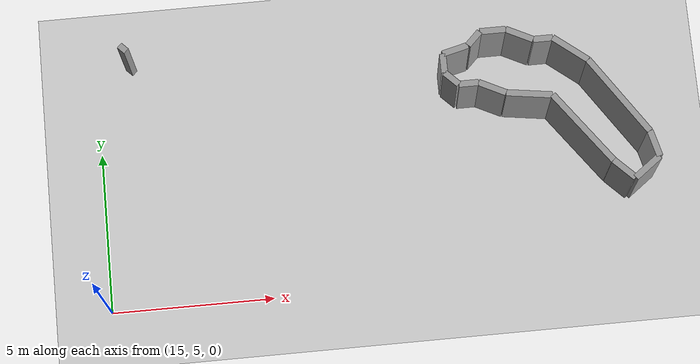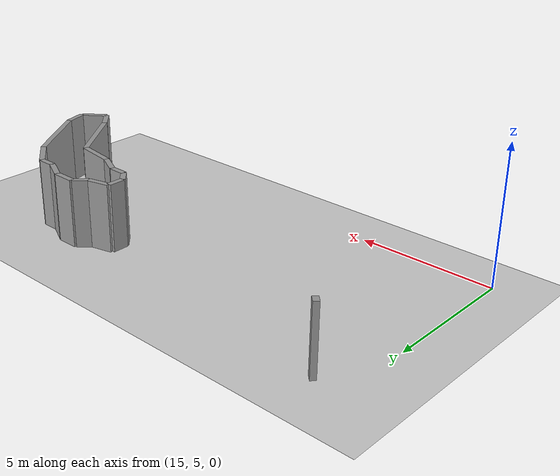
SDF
<sdf version="1.4">
 <world name="1_wall">
  <model name="ground_plane">
   <static>1</static>
   <link name="link">
    <collision name="collision">
     <geometry><plane><normal>0 0 1</normal><size>1000 1000</size></plane></geometry>
     <surface><friction><ode><mu>100</mu><mu2>50</mu2></ode></friction></surface>
    </collision>
    <visual name="visual">
     <cast_shadows>0</cast_shadows>
     <geometry><plane><normal>0 0 1</normal><size>10000 10000</size></plane></geometry>
     <material>
      <script><uri>file://media/materials/scripts/gazebo.material</uri><name>Gazebo/Grey</name></script>
     </material>
    </visual>
    <velocity_decay><linear>0</linear><angular>0</angular></velocity_decay>
   </link>
  </model>
  <model name="Wall_878">
   <static>1</static>
   <link name="Wall_878">
    <collision name="Wall_Collision_878">
     <geometry><box><size>0.282842712475 0.2 2.5</size></box></geometry>
     <pose>0 0 1.25 0 -0 0</pose>
    </collision>
    <visual name="Wall_Visual_878">
     <pose>0 0 1.25 0 -0 0</pose>
     <geometry><box><size>0.282842712475 0.2 2.5</size></box></geometry>
     <material>
      <script><uri>file://media/materials/scripts/gazebo.material</uri><name>Gazebo/Grey</name></script>
     </material>
    </visual>
    <velocity_decay><linear>0</linear><angular>0</angular></velocity_decay>
    <pose>16.1 12.7 0 0 0 -0.785398163397</pose>
   </link>
  </model>
  <model name="Wall_879">
   <static>1</static>
   <link name="Wall_879">
    <collision name="Wall_Collision_879">
     <geometry><box><size>0.848528137424 0.2 2.5</size></box></geometry>
     <pose>0 0 1.25 0 -0 0</pose>
    </collision>
    <visual name="Wall_Visual_879">
     <pose>0 0 1.25 0 -0 0</pose>
     <geometry><box><size>0.848528137424 0.2 2.5</size></box></geometry>
     <material>
      <script><uri>file://media/materials/scripts/gazebo.material</uri><name>Gazebo/Grey</name></script>
     </material>
    </visual>
    <velocity_decay><linear>0</linear><angular>0</angular></velocity_decay>
    <pose>30.9 7.5 0 0 0 -0.785398163397</pose>
   </link>
  </model>
  <model name="Wall_880">
   <static>1</static>
   <link name="Wall_880">
    <collision name="Wall_Collision_880">
     <geometry><box><size>1.0 0.2 2.5</size></box></geometry>
     <pose>0 0 1.25 0 -0 0</pose>
    </collision>
    <visual name="Wall_Visual_880">
     <pose>0 0 1.25 0 -0 0</pose>
     <geometry><box><size>1.0 0.2 2.5</size></box></geometry>
     <material>
      <script><uri>file://media/materials/scripts/gazebo.material</uri><name>Gazebo/Grey</name></script>
     </material>
    </visual>
    <velocity_decay><linear>0</linear><angular>0</angular></velocity_decay>
    <pose>31.6 7.5 0 0 0 0.643501108793</pose>
   </link>
  </model>
  <model name="Wall_881">
   <static>1</static>
   <link name="Wall_881">
    <collision name="Wall_Collision_881">
     <geometry><box><size>0.824621125124 0.2 2.5</size></box></geometry>
     <pose>0 0 1.25 0 -0 0</pose>
    </collision>
    <visual name="Wall_Visual_881">
     <pose>0 0 1.25 0 -0 0</pose>
     <geometry><box><size>0.824621125124 0.2 2.5</size></box></geometry>
     <material>
      <script><uri>file://media/materials/scripts/gazebo.material</uri><name>Gazebo/Grey</name></script>
     </material>
    </visual>
    <velocity_decay><linear>0</linear><angular>0</angular></velocity_decay>
    <pose>31.9 8.2 0 0 0 1.81577498992</pose>
   </link>
  </model>
  <model name="Wall_882">
   <static>1</static>
   <link name="Wall_882">
    <collision name="Wall_Collision_882">
     <geometry><box><size>2.88444102037 0.2 2.5</size></box></geometry>
     <pose>0 0 1.25 0 -0 0</pose>
    </collision>
    <visual name="Wall_Visual_882">
     <pose>0 0 1.25 0 -0 0</pose>
     <geometry><box><size>2.88444102037 0.2 2.5</size></box></geometry>
     <material>
      <script><uri>file://media/materials/scripts/gazebo.material</uri><name>Gazebo/Grey</name></script>
     </material>
    </visual>
    <velocity_decay><linear>0</linear><angular>0</angular></velocity_decay>
    <pose>31.0 9.8 0 0 0 2.15879893034</pose>
   </link>
  </model>
  <model name="Wall_883">
   <static>1</static>
   <link name="Wall_883">
    <collision name="Wall_Collision_883">
     <geometry><box><size>1.28062484749 0.2 2.5</size></box></geometry>
     <pose>0 0 1.25 0 -0 0</pose>
    </collision>
    <visual name="Wall_Visual_883">
     <pose>0 0 1.25 0 -0 0</pose>
     <geometry><box><size>1.28062484749 0.2 2.5</size></box></geometry>
     <material>
      <script><uri>file://media/materials/scripts/gazebo.material</uri><name>Gazebo/Grey</name></script>
     </material>
    </visual>
    <velocity_decay><linear>0</linear><angular>0</angular></velocity_decay>
    <pose>29.7 11.4 0 0 0 2.46685171137</pose>
   </link>
  </model>
  <model name="Wall_884">
   <static>1</static>
   <link name="Wall_884">
    <collision name="Wall_Collision_884">
     <geometry><box><size>0.6 0.2 2.5</size></box></geometry>
     <pose>0 0 1.25 0 -0 0</pose>
    </collision>
    <visual name="Wall_Visual_884">
     <pose>0 0 1.25 0 -0 0</pose>
     <geometry><box><size>0.6 0.2 2.5</size></box></geometry>
     <material>
      <script><uri>file://media/materials/scripts/gazebo.material</uri><name>Gazebo/Grey</name></script>
     </material>
    </visual>
    <velocity_decay><linear>0</linear><angular>0</angular></velocity_decay>
    <pose>28.9 11.8 0 0 0 3.14159265359</pose>
   </link>
  </model>
  <model name="Wall_885">
   <static>1</static>
   <link name="Wall_885">
    <collision name="Wall_Collision_885">
     <geometry><box><size>0.894427191 0.2 2.5</size></box></geometry>
     <pose>0 0 1.25 0 -0 0</pose>
    </collision>
    <visual name="Wall_Visual_885">
     <pose>0 0 1.25 0 -0 0</pose>
     <geometry><box><size>0.894427191 0.2 2.5</size></box></geometry>
     <material>
      <script><uri>file://media/materials/scripts/gazebo.material</uri><name>Gazebo/Grey</name></script>
     </material>
    </visual>
    <velocity_decay><linear>0</linear><angular>0</angular></velocity_decay>
    <pose>28.2 12.0 0 0 0 2.67794504459</pose>
   </link>
  </model>
  <model name="Wall_886">
   <static>1</static>
   <link name="Wall_886">
    <collision name="Wall_Collision_886">
     <geometry><box><size>0.8 0.2 2.5</size></box></geometry>
     <pose>0 0 1.25 0 -0 0</pose>
    </collision>
    <visual name="Wall_Visual_886">
     <pose>0 0 1.25 0 -0 0</pose>
     <geometry><box><size>0.8 0.2 2.5</size></box></geometry>
     <material>
      <script><uri>file://media/materials/scripts/gazebo.material</uri><name>Gazebo/Grey</name></script>
     </material>
    </visual>
    <velocity_decay><linear>0</linear><angular>0</angular></velocity_decay>
    <pose>27.4 12.2 0 0 0 3.14159265359</pose>
   </link>
  </model>
  <model name="Wall_887">
   <static>1</static>
   <link name="Wall_887">
    <collision name="Wall_Collision_887">
     <geometry><box><size>0.565685424949 0.2 2.5</size></box></geometry>
     <pose>0 0 1.25 0 -0 0</pose>
    </collision>
    <visual name="Wall_Visual_887">
     <pose>0 0 1.25 0 -0 0</pose>
     <geometry><box><size>0.565685424949 0.2 2.5</size></box></geometry>
     <material>
      <script><uri>file://media/materials/scripts/gazebo.material</uri><name>Gazebo/Grey</name></script>
     </material>
    </visual>
    <velocity_decay><linear>0</linear><angular>0</angular></velocity_decay>
    <pose>26.8 12.0 0 0 0 -2.35619449019</pose>
   </link>
  </model>
  <model name="Wall_888">
   <static>1</static>
   <link name="Wall_888">
    <collision name="Wall_Collision_888">
     <geometry><box><size>0.824621125124 0.2 2.5</size></box></geometry>
     <pose>0 0 1.25 0 -0 0</pose>
    </collision>
    <visual name="Wall_Visual_888">
     <pose>0 0 1.25 0 -0 0</pose>
     <geometry><box><size>0.824621125124 0.2 2.5</size></box></geometry>
     <material>
      <script><uri>file://media/materials/scripts/gazebo.material</uri><name>Gazebo/Grey</name></script>
     </material>
    </visual>
    <velocity_decay><linear>0</linear><angular>0</angular></velocity_decay>
    <pose>26.2 11.7 0 0 0 -2.89661399046</pose>
   </link>
  </model>
  <model name="Wall_889">
   <static>1</static>
   <link name="Wall_889">
    <collision name="Wall_Collision_889">
     <geometry><box><size>0.6 0.2 2.5</size></box></geometry>
     <pose>0 0 1.25 0 -0 0</pose>
    </collision>
    <visual name="Wall_Visual_889">
     <pose>0 0 1.25 0 -0 0</pose>
     <geometry><box><size>0.6 0.2 2.5</size></box></geometry>
     <material>
      <script><uri>file://media/materials/scripts/gazebo.material</uri><name>Gazebo/Grey</name></script>
     </material>
    </visual>
    <velocity_decay><linear>0</linear><angular>0</angular></velocity_decay>
    <pose>25.8 11.3 0 0 0 -1.57079632679</pose>
   </link>
  </model>
  <model name="Wall_890">
   <static>1</static>
   <link name="Wall_890">
    <collision name="Wall_Collision_890">
     <geometry><box><size>0.565685424949 0.2 2.5</size></box></geometry>
     <pose>0 0 1.25 0 -0 0</pose>
    </collision>
    <visual name="Wall_Visual_890">
     <pose>0 0 1.25 0 -0 0</pose>
     <geometry><box><size>0.565685424949 0.2 2.5</size></box></geometry>
     <material>
      <script><uri>file://media/materials/scripts/gazebo.material</uri><name>Gazebo/Grey</name></script>
     </material>
    </visual>
    <velocity_decay><linear>0</linear><angular>0</angular></velocity_decay>
    <pose>26.0 10.8 0 0 0 -0.785398163397</pose>
   </link>
  </model>
  <model name="Wall_891">
   <static>1</static>
   <link name="Wall_891">
    <collision name="Wall_Collision_891">
     <geometry><box><size>0.6 0.2 2.5</size></box></geometry>
     <pose>0 0 1.25 0 -0 0</pose>
    </collision>
    <visual name="Wall_Visual_891">
     <pose>0 0 1.25 0 -0 0</pose>
     <geometry><box><size>0.6 0.2 2.5</size></box></geometry>
     <material>
      <script><uri>file://media/materials/scripts/gazebo.material</uri><name>Gazebo/Grey</name></script>
     </material>
    </visual>
    <velocity_decay><linear>0</linear><angular>0</angular></velocity_decay>
    <pose>26.5 10.6 0 0 0 0.0</pose>
   </link>
  </model>
  <model name="Wall_892">
   <static>1</static>
   <link name="Wall_892">
    <collision name="Wall_Collision_892">
     <geometry><box><size>0.894427191 0.2 2.5</size></box></geometry>
     <pose>0 0 1.25 0 -0 0</pose>
    </collision>
    <visual name="Wall_Visual_892">
     <pose>0 0 1.25 0 -0 0</pose>
     <geometry><box><size>0.894427191 0.2 2.5</size></box></geometry>
     <material>
      <script><uri>file://media/materials/scripts/gazebo.material</uri><name>Gazebo/Grey</name></script>
     </material>
    </visual>
    <velocity_decay><linear>0</linear><angular>0</angular></velocity_decay>
    <pose>27.2 10.4 0 0 0 -0.463647609001</pose>
   </link>
  </model>
  <model name="Wall_893">
   <static>1</static>
   <link name="Wall_893">
    <collision name="Wall_Collision_893">
     <geometry><box><size>1.41421356237 0.2 2.5</size></box></geometry>
     <pose>0 0 1.25 0 -0 0</pose>
    </collision>
    <visual name="Wall_Visual_893">
     <pose>0 0 1.25 0 -0 0</pose>
     <geometry><box><size>1.41421356237 0.2 2.5</size></box></geometry>
     <material>
      <script><uri>file://media/materials/scripts/gazebo.material</uri><name>Gazebo/Grey</name></script>
     </material>
    </visual>
    <velocity_decay><linear>0</linear><angular>0</angular></velocity_decay>
    <pose>28.3 10.1 0 0 0 -0.141897054604</pose>
   </link>
  </model>
  <model name="Wall_894">
   <static>1</static>
   <link name="Wall_894">
    <collision name="Wall_Collision_894">
     <geometry><box><size>2.72029410175 0.2 2.5</size></box></geometry>
     <pose>0 0 1.25 0 -0 0</pose>
    </collision>
    <visual name="Wall_Visual_894">
     <pose>0 0 1.25 0 -0 0</pose>
     <geometry><box><size>2.72029410175 0.2 2.5</size></box></geometry>
     <material>
      <script><uri>file://media/materials/scripts/gazebo.material</uri><name>Gazebo/Grey</name></script>
     </material>
    </visual>
    <velocity_decay><linear>0</linear><angular>0</angular></velocity_decay>
    <pose>29.8 8.9 0 0 0 -0.942000040379</pose>
   </link>
  </model>
 </world>
</sdf>
